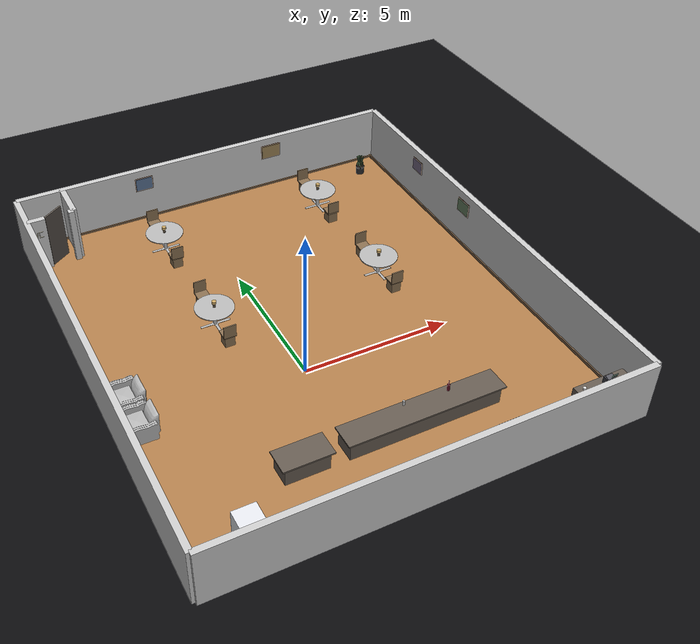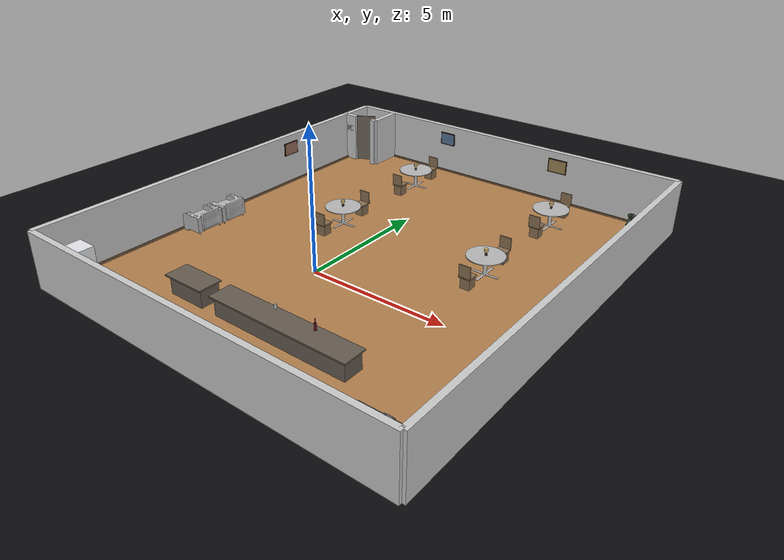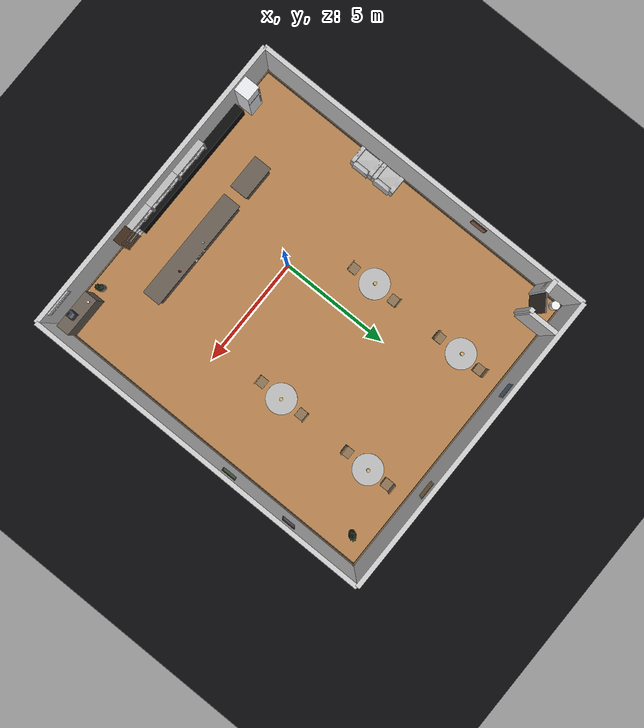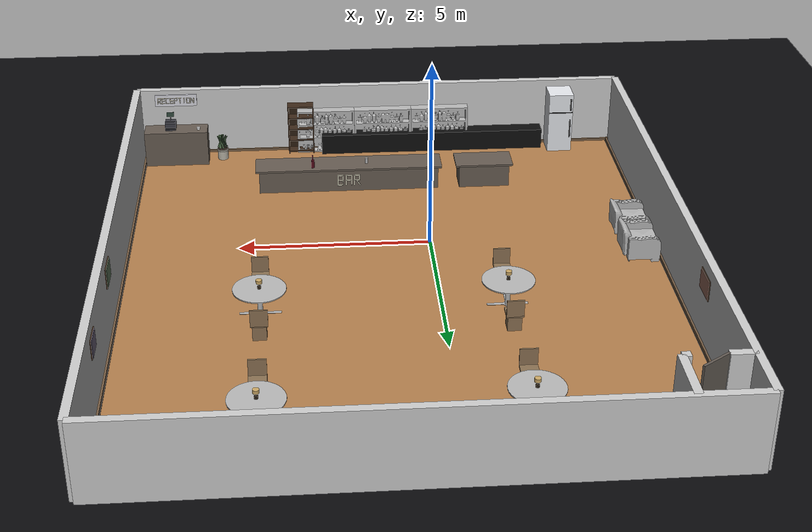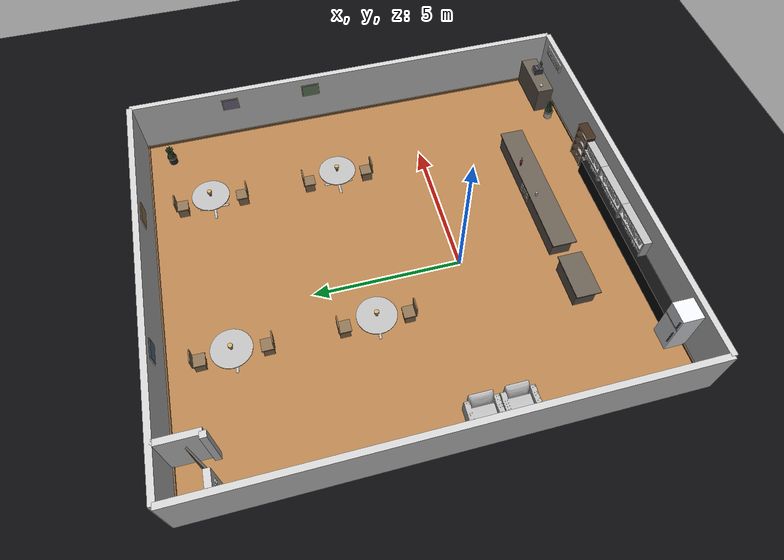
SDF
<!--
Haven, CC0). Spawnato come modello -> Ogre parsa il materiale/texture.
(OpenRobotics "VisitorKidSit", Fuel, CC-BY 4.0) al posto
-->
<sdf version="1.4">
 <world name="default">
  <physics type="ode">
   <gravity>0 0 -9.81</gravity>
   <ode>
    <solver><type>quick</type><iters>20</iters><sor>1.0</sor></solver>
    <constraints>
     <cfm>0.0</cfm>
     <erp>0.2</erp>
     <contact_max_correcting_vel>100.0</contact_max_correcting_vel>
     <contact_surface_layer>0.0</contact_surface_layer>
    </constraints>
   </ode>
   <real_time_update_rate>1000</real_time_update_rate>
   <max_step_size>0.001</max_step_size>
  </physics>
  <scene>
   <ambient>0.55 0.52 0.48 1</ambient>
   <background>0.05 0.05 0.06 1</background>
   <shadows>0</shadows>
   <grid>0</grid>
   <origin_visual>0</origin_visual>
  </scene>
  <include><uri>model://sun</uri></include>
  <model name="ground_plane">
   <static>true</static>
   <pose>1.0 2.0 0 0 0 0</pose>
   <link name="l">
    <collision name="c">
     <pose>0 0 -0.05 0 0 0</pose>
     <geometry><box><size>80 80 0.1</size></box></geometry>
    </collision>
    <visual name="v">
     <pose>0 0 -0.12 0 0 0</pose>
     <geometry><box><size>80 80 0.1</size></box></geometry>
     <material><ambient>0.03 0.03 0.04 1</ambient><diffuse>0.04 0.04 0.05 1</diffuse></material>
    </visual>
   </link>
  </model>
  <include><name>dining_floor</name><uri>model://wood_floor</uri><pose>1.0 2.0 0.02 0 0 0</pose></include>
  <plugin name="gazebo_ros_state" filename="libgazebo_ros_state.so"><update_rate>30.0</update_rate></plugin>
  <model name="wall_south">
   <pose>1 -6 1 0 0 0</pose>
   <static>true</static>
   <link name="link">
    <collision name="col"><geometry><box><size>14 0.2 2</size></box></geometry></collision>
    <visual name="vis">
     <geometry><box><size>14 0.2 2</size></box></geometry>
     <material><ambient>0.8 0.8 0.8 1</ambient></material>
    </visual>
   </link>
  </model>
  <model name="wall_north">
   <pose>1 10 1 0 0 0</pose>
   <static>true</static>
   <link name="link">
    <collision name="col"><geometry><box><size>14 0.2 2</size></box></geometry></collision>
    <visual name="vis">
     <geometry><box><size>14 0.2 2</size></box></geometry>
     <material><ambient>0.8 0.8 0.8 1</ambient></material>
    </visual>
   </link>
  </model>
  <model name="wall_west">
   <pose>-6 2 1 0 0 1.5708</pose>
   <static>true</static>
   <link name="link">
    <collision name="col"><geometry><box><size>16 0.2 2</size></box></geometry></collision>
    <visual name="vis">
     <geometry><box><size>16 0.2 2</size></box></geometry>
     <material><ambient>0.8 0.8 0.8 1</ambient></material>
    </visual>
   </link>
  </model>
  <model name="wall_east">
   <pose>8 2 1 0 0 1.5708</pose>
   <static>true</static>
   <link name="link">
    <collision name="col"><geometry><box><size>16 0.2 2</size></box></geometry></collision>
    <visual name="vis">
     <geometry><box><size>16 0.2 2</size></box></geometry>
     <material><ambient>0.8 0.8 0.8 1</ambient></material>
    </visual>
   </link>
  </model>
  <model name="bathroom_wall_south_w">
   <pose>-5.7 8.6 1 0 0 0</pose>
   <static>true</static>
   <link name="link">
    <collision name="col"><geometry><box><size>0.6 0.2 2</size></box></geometry></collision>
    <visual name="vis">
     <geometry><box><size>0.6 0.2 2</size></box></geometry>
     <material><ambient>0.8 0.8 0.8 1</ambient></material>
    </visual>
   </link>
  </model>
  <model name="bathroom_wall_south_e">
   <pose>-4.5 8.6 1 0 0 0</pose>
   <static>true</static>
   <link name="link">
    <collision name="col"><geometry><box><size>0.2 0.2 2</size></box></geometry></collision>
    <visual name="vis">
     <geometry><box><size>0.2 0.2 2</size></box></geometry>
     <material><ambient>0.8 0.8 0.8 1</ambient></material>
    </visual>
   </link>
  </model>
  <model name="bathroom_wall_east">
   <pose>-4.4 9.3 1 0 0 0</pose>
   <static>true</static>
   <link name="link">
    <collision name="col"><geometry><box><size>0.2 1.4 2</size></box></geometry></collision>
    <visual name="vis">
     <geometry><box><size>0.2 1.4 2</size></box></geometry>
     <material><ambient>0.8 0.8 0.8 1</ambient></material>
    </visual>
   </link>
  </model>
  <model name="bathroom_door">
   <pose>-5.07 8.83 1 0 0 0.6</pose>
   <static>true</static>
   <link name="link">
    <collision name="col"><geometry><box><size>0.8 0.06 2</size></box></geometry></collision>
    <visual name="vis">
     <geometry><box><size>0.8 0.06 2</size></box></geometry>
     <material><ambient>0.30 0.28 0.26 1</ambient><diffuse>0.38 0.35 0.32 1</diffuse></material>
    </visual>
   </link>
  </model>
  <model name="bathroom_toilet">
   <pose>-5.65 9.6 0.2 0 0 0</pose>
   <static>true</static>
   <link name="link">
    <collision name="col">
     <geometry><cylinder><radius>0.18</radius><length>0.4</length></cylinder></geometry>
    </collision>
    <visual name="vis">
     <geometry><cylinder><radius>0.18</radius><length>0.4</length></cylinder></geometry>
     <material><ambient>0.9 0.9 0.9 1</ambient><diffuse>0.95 0.95 0.95 1</diffuse></material>
    </visual>
   </link>
  </model>
  <model name="reception_desk">
   <pose>6.9 -5.3 0.525 0 0 0</pose>
   <static>true</static>
   <link name="link">
    <collision name="col"><geometry><box><size>1.8 0.6 1.05</size></box></geometry></collision>
    <visual name="vis">
     <geometry><box><size>1.8 0.6 1.05</size></box></geometry>
     <material><ambient>0.30 0.28 0.26 1</ambient><diffuse>0.40 0.36 0.32 1</diffuse></material>
    </visual>
   </link>
  </model>
  <model name="reception_bell">
   <pose>6.25 -5.2 1.1 0 0 0</pose>
   <static>true</static>
   <link name="link">
    <visual name="vis">
     <geometry><cylinder><radius>0.05</radius><length>0.06</length></cylinder></geometry>
     <material><ambient>0.85 0.85 0.85 1</ambient><diffuse>0.92 0.92 0.92 1</diffuse></material>
    </visual>
   </link>
  </model>
  <model name="reception_sign">
   <pose>6.9 -5.88 1.7 0 0 0</pose>
   <static>true</static>
   <link name="link">
    <visual name="vis">
     <geometry><box><size>1.2 0.05 0.35</size></box></geometry>
     <material><ambient>0.75 0.75 0.78 1</ambient><diffuse>0.85 0.85 0.88 1</diffuse></material>
    </visual>
   </link>
  </model>
  <model name="kitchen_table">
   <static>true</static>
   <pose>2.0 -3.4 0.33 0 0 0</pose>
   <link name="link">
    <collision name="collision"><geometry><box><size>5.0 0.7 0.66</size></box></geometry></collision>
    <visual name="visual">
     <geometry><box><size>5.0 0.7 0.66</size></box></geometry>
     <material><ambient>0.30 0.28 0.26 1</ambient><diffuse>0.40 0.36 0.32 1</diffuse></material>
    </visual>
   </link>
  </model>
  <model name="bar_counter_top">
   <static>true</static>
   <pose>2.0 -3.43 0.685 0 0 0</pose>
   <link name="link">
    <collision name="c"><geometry><box><size>5.2 0.84 0.05</size></box></geometry></collision>
    <visual name="v">
     <geometry><box><size>5.2 0.84 0.05</size></box></geometry>
     <material><ambient>0.30 0.28 0.26 1</ambient><diffuse>0.40 0.36 0.32 1</diffuse></material>
    </visual>
   </link>
  </model>
  <model name="kitchen_fridge">
   <static>true</static>
   <pose>-4.3 -5.55 0 0 0 0</pose>
   <link name="link">
    <collision name="body">
     <pose>0 0 0.9 0 0 0</pose>
     <geometry><box><size>0.7 0.7 1.8</size></box></geometry>
    </collision>
    <visual name="body">
     <pose>0 0 0.9 0 0 0</pose>
     <geometry><box><size>0.7 0.7 1.8</size></box></geometry>
     <material>
      <ambient>0.82 0.84 0.86 1</ambient>
      <diffuse>0.9 0.91 0.93 1</diffuse>
      <specular>0.5 0.5 0.5 1</specular>
     </material>
    </visual>
    <visual name="split">
     <pose>0 0.351 1.25 0 0 0</pose>
     <geometry><box><size>0.7 0.02 0.025</size></box></geometry>
     <material><ambient>0.15 0.15 0.15 1</ambient></material>
    </visual>
    <visual name="handle_top">
     <pose>-0.28 0.37 1.5 0 0 0</pose>
     <geometry><box><size>0.035 0.05 0.35</size></box></geometry>
     <material><ambient>0.08 0.08 0.08 1</ambient></material>
    </visual>
    <visual name="handle_bottom">
     <pose>-0.28 0.37 0.75 0 0 0</pose>
     <geometry><box><size>0.035 0.05 0.55</size></box></geometry>
     <material><ambient>0.08 0.08 0.08 1</ambient></material>
    </visual>
   </link>
  </model>
  <model name="kitchen_back_counter">
   <static>true</static>
   <pose>-0.55 -5.68 0.305 0 0 0</pose>
   <link name="link">
    <collision name="c"><geometry><box><size>6.5 0.44 0.61</size></box></geometry></collision>
    <visual name="v">
     <geometry><box><size>6.5 0.44 0.61</size></box></geometry>
     <material>
      <ambient>0.02 0.02 0.02 1</ambient>
      <diffuse>0.05 0.05 0.05 1</diffuse>
      <specular>0.12 0.12 0.12 1</specular>
     </material>
    </visual>
   </link>
  </model>
  <model name="kitchen_shelf_cabinet">
   <static>true</static>
   <pose>3.3 -5.72 0 0 0 0</pose>
   <link name="link">
    <visual name="sideL">
     <pose>-0.36 0 0.75 0 0 0</pose>
     <geometry><box><size>0.03 0.34 1.5</size></box></geometry>
     <material><ambient>0.14 0.1 0.06 1</ambient><diffuse>0.24 0.16 0.1 1</diffuse></material>
    </visual>
    <visual name="sideR">
     <pose>0.36 0 0.75 0 0 0</pose>
     <geometry><box><size>0.03 0.34 1.5</size></box></geometry>
     <material><ambient>0.14 0.1 0.06 1</ambient><diffuse>0.24 0.16 0.1 1</diffuse></material>
    </visual>
    <visual name="back">
     <pose>0 -0.16 0.75 0 0 0</pose>
     <geometry><box><size>0.75 0.02 1.5</size></box></geometry>
     <material><ambient>0.1 0.07 0.04 1</ambient><diffuse>0.18 0.12 0.07 1</diffuse></material>
    </visual>
    <visual name="sh1">
     <pose>0 0 0.10 0 0 0</pose>
     <geometry><box><size>0.75 0.34 0.025</size></box></geometry>
     <material><ambient>0.14 0.1 0.06 1</ambient><diffuse>0.24 0.16 0.1 1</diffuse></material>
    </visual>
    <visual name="sh2">
     <pose>0 0 0.45 0 0 0</pose>
     <geometry><box><size>0.75 0.34 0.025</size></box></geometry>
     <material><ambient>0.14 0.1 0.06 1</ambient><diffuse>0.24 0.16 0.1 1</diffuse></material>
    </visual>
    <visual name="sh3">
     <pose>0 0 0.80 0 0 0</pose>
     <geometry><box><size>0.75 0.34 0.025</size></box></geometry>
     <material><ambient>0.14 0.1 0.06 1</ambient><diffuse>0.24 0.16 0.1 1</diffuse></material>
    </visual>
    <visual name="sh4">
     <pose>0 0 1.15 0 0 0</pose>
     <geometry><box><size>0.75 0.34 0.025</size></box></geometry>
     <material><ambient>0.14 0.1 0.06 1</ambient><diffuse>0.24 0.16 0.1 1</diffuse></material>
    </visual>
    <visual name="sh5">
     <pose>0 0 1.50 0 0 0</pose>
     <geometry><box><size>0.75 0.34 0.025</size></box></geometry>
     <material><ambient>0.14 0.1 0.06 1</ambient><diffuse>0.24 0.16 0.1 1</diffuse></material>
    </visual>
    <collision name="c">
     <pose>0 0 0.75 0 0 0</pose>
     <geometry><box><size>0.75 0.34 1.5</size></box></geometry>
    </collision>
   </link>
  </model>
  <include>
   <name>bar_bottles_1</name>
   <uri>model://bar_bottles</uri>
   <pose>-0.77 -5.75 0.67 1.5708 0 1.5708</pose>
  </include>
  <include>
   <name>bar_bottles_2</name>
   <uri>model://bar_bottles</uri>
   <pose>0.90 -5.75 0.67 1.5708 0 1.5708</pose>
  </include>
  <include>
   <name>bar_bottles_3</name>
   <uri>model://bar_bottles</uri>
   <pose>2.57 -5.75 0.67 1.5708 0 1.5708</pose>
  </include>
  <include><name>lodge_sofa</name><uri>model://lodge_sofa</uri><pose>-5.3 0.4 0.02 0 0 1.5708</pose></include>
  <include><name>water_bottle</name><uri>model://water_bottle</uri><pose>1.5 -3.2 0.80 0 0 0</pose></include>
  <model name="wine_bottle">
   <static>true</static>
   <pose>3.0 -3.2 0.71 0 0 0</pose>
   <link name="l">
    <visual name="b">
     <pose>0 0 0.11 0 0 0</pose>
     <geometry><cylinder><radius>0.045</radius><length>0.22</length></cylinder></geometry>
     <material>
      <ambient>0.20 0.02 0.06 1</ambient>
      <diffuse>0.34 0.04 0.10 1</diffuse>
      <specular>0.2 0.05 0.08 1</specular>
     </material>
    </visual>
    <visual name="n">
     <pose>0 0 0.30 0 0 0</pose>
     <geometry><cylinder><radius>0.014</radius><length>0.14</length></cylinder></geometry>
     <material><ambient>0.20 0.02 0.06 1</ambient><diffuse>0.34 0.04 0.10 1</diffuse></material>
    </visual>
   </link>
  </model>
  <model name="side_counter">
   <static>true</static>
   <pose>-1.8 -3.4 0.33 0 0 0</pose>
   <link name="link">
    <collision name="collision"><geometry><box><size>1.4 0.7 0.66</size></box></geometry></collision>
    <visual name="visual">
     <geometry><box><size>1.4 0.7 0.66</size></box></geometry>
     <material><ambient>0.30 0.28 0.26 1</ambient><diffuse>0.40 0.36 0.32 1</diffuse></material>
    </visual>
   </link>
  </model>
  <model name="side_counter_top">
   <static>true</static>
   <pose>-1.8 -3.43 0.685 0 0 0</pose>
   <link name="link">
    <collision name="c"><geometry><box><size>1.6 0.84 0.05</size></box></geometry></collision>
    <visual name="v">
     <geometry><box><size>1.6 0.84 0.05</size></box></geometry>
     <material><ambient>0.30 0.28 0.26 1</ambient><diffuse>0.40 0.36 0.32 1</diffuse></material>
    </visual>
   </link>
  </model>
  <include>
   <name>dining_table_1</name>
   <uri>model://bar_table</uri>
   <pose>4.0 2.5 0 0 0 0</pose>
   <static>true</static>
  </include>
  <include>
   <name>dining_table_2</name>
   <uri>model://bar_table</uri>
   <pose>-2.0 2.5 0 0 0 0</pose>
   <static>true</static>
  </include>
  <include>
   <name>dining_table_3</name>
   <uri>model://bar_table</uri>
   <pose>-2.0 7.0 0 0 0 0</pose>
   <static>true</static>
  </include>
  <include>
   <name>dining_table_4</name>
   <uri>model://bar_table</uri>
   <pose>4.0 7.0 0 0 0 0</pose>
   <static>true</static>
  </include>
  <model name="chair_1a">
   <static>true</static>
   <pose>4.40 2.20 0 0 0 0</pose>
   <link name="l">
    <visual name="s">
     <pose>0 0 0.44 0 0 0</pose>
     <geometry><box><size>0.42 0.42 0.05</size></box></geometry>
     <material><ambient>0.34 0.28 0.20 1</ambient><diffuse>0.54 0.44 0.32 1</diffuse></material>
    </visual>
    <visual name="b">
     <pose>0 -0.19 0.66 0 0 0</pose>
     <geometry><box><size>0.42 0.04 0.44</size></box></geometry>
     <material><ambient>0.34 0.28 0.20 1</ambient><diffuse>0.54 0.44 0.32 1</diffuse></material>
    </visual>
    <visual name="base">
     <pose>0 0 0.21 0 0 0</pose>
     <geometry><box><size>0.34 0.34 0.42</size></box></geometry>
     <material><ambient>0.34 0.28 0.20 1</ambient><diffuse>0.54 0.44 0.32 1</diffuse></material>
    </visual>
   </link>
  </model>
  <model name="chair_1b">
   <static>true</static>
   <pose>4.40 4.30 0 0 0 3.14159</pose>
   <link name="l">
    <visual name="s">
     <pose>0 0 0.44 0 0 0</pose>
     <geometry><box><size>0.42 0.42 0.05</size></box></geometry>
     <material><ambient>0.34 0.28 0.20 1</ambient><diffuse>0.54 0.44 0.32 1</diffuse></material>
    </visual>
    <visual name="b">
     <pose>0 -0.19 0.66 0 0 0</pose>
     <geometry><box><size>0.42 0.04 0.44</size></box></geometry>
     <material><ambient>0.34 0.28 0.20 1</ambient><diffuse>0.54 0.44 0.32 1</diffuse></material>
    </visual>
    <visual name="base">
     <pose>0 0 0.21 0 0 0</pose>
     <geometry><box><size>0.34 0.34 0.42</size></box></geometry>
     <material><ambient>0.34 0.28 0.20 1</ambient><diffuse>0.54 0.44 0.32 1</diffuse></material>
    </visual>
   </link>
  </model>
  <model name="chair_2a">
   <static>true</static>
   <pose>-1.60 2.20 0 0 0 0</pose>
   <link name="l">
    <visual name="s">
     <pose>0 0 0.44 0 0 0</pose>
     <geometry><box><size>0.42 0.42 0.05</size></box></geometry>
     <material><ambient>0.34 0.28 0.20 1</ambient><diffuse>0.54 0.44 0.32 1</diffuse></material>
    </visual>
    <visual name="b">
     <pose>0 -0.19 0.66 0 0 0</pose>
     <geometry><box><size>0.42 0.04 0.44</size></box></geometry>
     <material><ambient>0.34 0.28 0.20 1</ambient><diffuse>0.54 0.44 0.32 1</diffuse></material>
    </visual>
    <visual name="base">
     <pose>0 0 0.21 0 0 0</pose>
     <geometry><box><size>0.34 0.34 0.42</size></box></geometry>
     <material><ambient>0.34 0.28 0.20 1</ambient><diffuse>0.54 0.44 0.32 1</diffuse></material>
    </visual>
   </link>
  </model>
  <model name="chair_2b">
   <static>true</static>
   <pose>-1.60 4.30 0 0 0 3.14159</pose>
   <link name="l">
    <visual name="s">
     <pose>0 0 0.44 0 0 0</pose>
     <geometry><box><size>0.42 0.42 0.05</size></box></geometry>
     <material><ambient>0.34 0.28 0.20 1</ambient><diffuse>0.54 0.44 0.32 1</diffuse></material>
    </visual>
    <visual name="b">
     <pose>0 -0.19 0.66 0 0 0</pose>
     <geometry><box><size>0.42 0.04 0.44</size></box></geometry>
     <material><ambient>0.34 0.28 0.20 1</ambient><diffuse>0.54 0.44 0.32 1</diffuse></material>
    </visual>
    <visual name="base">
     <pose>0 0 0.21 0 0 0</pose>
     <geometry><box><size>0.34 0.34 0.42</size></box></geometry>
     <material><ambient>0.34 0.28 0.20 1</ambient><diffuse>0.54 0.44 0.32 1</diffuse></material>
    </visual>
   </link>
  </model>
  <model name="chair_3a">
   <static>true</static>
   <pose>-1.60 6.70 0 0 0 0</pose>
   <link name="l">
    <visual name="s">
     <pose>0 0 0.44 0 0 0</pose>
     <geometry><box><size>0.42 0.42 0.05</size></box></geometry>
     <material><ambient>0.34 0.28 0.20 1</ambient><diffuse>0.54 0.44 0.32 1</diffuse></material>
    </visual>
    <visual name="b">
     <pose>0 -0.19 0.66 0 0 0</pose>
     <geometry><box><size>0.42 0.04 0.44</size></box></geometry>
     <material><ambient>0.34 0.28 0.20 1</ambient><diffuse>0.54 0.44 0.32 1</diffuse></material>
    </visual>
    <visual name="base">
     <pose>0 0 0.21 0 0 0</pose>
     <geometry><box><size>0.34 0.34 0.42</size></box></geometry>
     <material><ambient>0.34 0.28 0.20 1</ambient><diffuse>0.54 0.44 0.32 1</diffuse></material>
    </visual>
   </link>
  </model>
  <model name="chair_3b">
   <static>true</static>
   <pose>-1.60 8.80 0 0 0 3.14159</pose>
   <link name="l">
    <visual name="s">
     <pose>0 0 0.44 0 0 0</pose>
     <geometry><box><size>0.42 0.42 0.05</size></box></geometry>
     <material><ambient>0.34 0.28 0.20 1</ambient><diffuse>0.54 0.44 0.32 1</diffuse></material>
    </visual>
    <visual name="b">
     <pose>0 -0.19 0.66 0 0 0</pose>
     <geometry><box><size>0.42 0.04 0.44</size></box></geometry>
     <material><ambient>0.34 0.28 0.20 1</ambient><diffuse>0.54 0.44 0.32 1</diffuse></material>
    </visual>
    <visual name="base">
     <pose>0 0 0.21 0 0 0</pose>
     <geometry><box><size>0.34 0.34 0.42</size></box></geometry>
     <material><ambient>0.34 0.28 0.20 1</ambient><diffuse>0.54 0.44 0.32 1</diffuse></material>
    </visual>
   </link>
  </model>
  <model name="chair_4a">
   <static>true</static>
   <pose>4.40 6.70 0 0 0 0</pose>
   <link name="l">
    <visual name="s">
     <pose>0 0 0.44 0 0 0</pose>
     <geometry><box><size>0.42 0.42 0.05</size></box></geometry>
     <material><ambient>0.34 0.28 0.20 1</ambient><diffuse>0.54 0.44 0.32 1</diffuse></material>
    </visual>
    <visual name="b">
     <pose>0 -0.19 0.66 0 0 0</pose>
     <geometry><box><size>0.42 0.04 0.44</size></box></geometry>
     <material><ambient>0.34 0.28 0.20 1</ambient><diffuse>0.54 0.44 0.32 1</diffuse></material>
    </visual>
    <visual name="base">
     <pose>0 0 0.21 0 0 0</pose>
     <geometry><box><size>0.34 0.34 0.42</size></box></geometry>
     <material><ambient>0.34 0.28 0.20 1</ambient><diffuse>0.54 0.44 0.32 1</diffuse></material>
    </visual>
   </link>
  </model>
  <model name="chair_4b">
   <static>true</static>
   <pose>4.40 8.80 0 0 0 3.14159</pose>
   <link name="l">
    <visual name="s">
     <pose>0 0 0.44 0 0 0</pose>
     <geometry><box><size>0.42 0.42 0.05</size></box></geometry>
     <material><ambient>0.34 0.28 0.20 1</ambient><diffuse>0.54 0.44 0.32 1</diffuse></material>
    </visual>
    <visual name="b">
     <pose>0 -0.19 0.66 0 0 0</pose>
     <geometry><box><size>0.42 0.04 0.44</size></box></geometry>
     <material><ambient>0.34 0.28 0.20 1</ambient><diffuse>0.54 0.44 0.32 1</diffuse></material>
    </visual>
    <visual name="base">
     <pose>0 0 0.21 0 0 0</pose>
     <geometry><box><size>0.34 0.34 0.42</size></box></geometry>
     <material><ambient>0.34 0.28 0.20 1</ambient><diffuse>0.54 0.44 0.32 1</diffuse></material>
    </visual>
   </link>
  </model>
  <model name="lamp_t1">
   <static>true</static>
   <pose>4.40 3.25 0.72 0 0 0</pose>
   <link name="l">
    <visual name="base">
     <pose>0 0 0.03 0 0 0</pose>
     <geometry><cylinder><radius>0.045</radius><length>0.06</length></cylinder></geometry>
     <material><ambient>0.10 0.08 0.05 1</ambient><diffuse>0.18 0.14 0.09 1</diffuse></material>
    </visual>
    <visual name="stem">
     <pose>0 0 0.11 0 0 0</pose>
     <geometry><cylinder><radius>0.008</radius><length>0.10</length></cylinder></geometry>
     <material><ambient>0.10 0.08 0.05 1</ambient></material>
    </visual>
    <visual name="shade">
     <pose>0 0 0.19 0 0 0</pose>
     <geometry><cylinder><radius>0.075</radius><length>0.09</length></cylinder></geometry>
     <material>
      <ambient>0.55 0.45 0.28 1</ambient>
      <diffuse>0.80 0.66 0.40 1</diffuse>
      <emissive>0.85 0.70 0.42 1</emissive>
     </material>
    </visual>
   </link>
  </model>
  <model name="lamp_t2">
   <static>true</static>
   <pose>-1.60 3.25 0.72 0 0 0</pose>
   <link name="l">
    <visual name="base">
     <pose>0 0 0.03 0 0 0</pose>
     <geometry><cylinder><radius>0.045</radius><length>0.06</length></cylinder></geometry>
     <material><ambient>0.10 0.08 0.05 1</ambient><diffuse>0.18 0.14 0.09 1</diffuse></material>
    </visual>
    <visual name="stem">
     <pose>0 0 0.11 0 0 0</pose>
     <geometry><cylinder><radius>0.008</radius><length>0.10</length></cylinder></geometry>
     <material><ambient>0.10 0.08 0.05 1</ambient></material>
    </visual>
    <visual name="shade">
     <pose>0 0 0.19 0 0 0</pose>
     <geometry><cylinder><radius>0.075</radius><length>0.09</length></cylinder></geometry>
     <material>
      <ambient>0.55 0.45 0.28 1</ambient>
      <diffuse>0.80 0.66 0.40 1</diffuse>
      <emissive>0.85 0.70 0.42 1</emissive>
     </material>
    </visual>
   </link>
  </model>
  <model name="lamp_t3">
   <static>true</static>
   <pose>-1.60 7.75 0.72 0 0 0</pose>
   <link name="l">
    <visual name="base">
     <pose>0 0 0.03 0 0 0</pose>
     <geometry><cylinder><radius>0.045</radius><length>0.06</length></cylinder></geometry>
     <material><ambient>0.10 0.08 0.05 1</ambient><diffuse>0.18 0.14 0.09 1</diffuse></material>
    </visual>
    <visual name="stem">
     <pose>0 0 0.11 0 0 0</pose>
     <geometry><cylinder><radius>0.008</radius><length>0.10</length></cylinder></geometry>
     <material><ambient>0.10 0.08 0.05 1</ambient></material>
    </visual>
    <visual name="shade">
     <pose>0 0 0.19 0 0 0</pose>
     <geometry><cylinder><radius>0.075</radius><length>0.09</length></cylinder></geometry>
     <material>
      <ambient>0.55 0.45 0.28 1</ambient>
      <diffuse>0.80 0.66 0.40 1</diffuse>
      <emissive>0.85 0.70 0.42 1</emissive>
     </material>
    </visual>
   </link>
  </model>
  <model name="lamp_t4">
   <static>true</static>
   <pose>4.40 7.75 0.72 0 0 0</pose>
   <link name="l">
    <visual name="base">
     <pose>0 0 0.03 0 0 0</pose>
     <geometry><cylinder><radius>0.045</radius><length>0.06</length></cylinder></geometry>
     <material><ambient>0.10 0.08 0.05 1</ambient><diffuse>0.18 0.14 0.09 1</diffuse></material>
    </visual>
    <visual name="stem">
     <pose>0 0 0.11 0 0 0</pose>
     <geometry><cylinder><radius>0.008</radius><length>0.10</length></cylinder></geometry>
     <material><ambient>0.10 0.08 0.05 1</ambient></material>
    </visual>
    <visual name="shade">
     <pose>0 0 0.19 0 0 0</pose>
     <geometry><cylinder><radius>0.075</radius><length>0.09</length></cylinder></geometry>
     <material>
      <ambient>0.55 0.45 0.28 1</ambient>
      <diffuse>0.80 0.66 0.40 1</diffuse>
      <emissive>0.85 0.70 0.42 1</emissive>
     </material>
    </visual>
   </link>
  </model>
  <model name="reception_word">
   <static>true</static>
   <link name="l">
    <visual name="r0_0">
     <pose>7.4170 -5.840 1.7000 0 0.0000 0</pose>
     <geometry><box><size>0.018 0.02 0.170</size></box></geometry>
     <material>
      <ambient>0.60 0.58 0.50 1</ambient>
      <diffuse>0.97 0.95 0.85 1</diffuse>
      <emissive>0.95 0.90 0.70 1</emissive>
     </material>
    </visual>
    <visual name="r0_1">
     <pose>7.3720 -5.840 1.7760 0 0.0000 0</pose>
     <geometry><box><size>0.090 0.02 0.018</size></box></geometry>
     <material>
      <ambient>0.60 0.58 0.50 1</ambient>
      <diffuse>0.97 0.95 0.85 1</diffuse>
      <emissive>0.95 0.90 0.70 1</emissive>
     </material>
    </visual>
    <visual name="r0_2">
     <pose>7.3720 -5.840 1.7000 0 0.0000 0</pose>
     <geometry><box><size>0.090 0.02 0.018</size></box></geometry>
     <material>
      <ambient>0.60 0.58 0.50 1</ambient>
      <diffuse>0.97 0.95 0.85 1</diffuse>
      <emissive>0.95 0.90 0.70 1</emissive>
     </material>
    </visual>
    <visual name="r0_3">
     <pose>7.3360 -5.840 1.7425 0 0.0000 0</pose>
     <geometry><box><size>0.018 0.02 0.085</size></box></geometry>
     <material>
      <ambient>0.60 0.58 0.50 1</ambient>
      <diffuse>0.97 0.95 0.85 1</diffuse>
      <emissive>0.95 0.90 0.70 1</emissive>
     </material>
    </visual>
    <visual name="r0_4">
     <pose>7.3558 -5.840 1.6575 0 0.6028 0</pose>
     <geometry><box><size>0.018 0.02 0.105</size></box></geometry>
     <material>
      <ambient>0.60 0.58 0.50 1</ambient>
      <diffuse>0.97 0.95 0.85 1</diffuse>
      <emissive>0.95 0.90 0.70 1</emissive>
     </material>
    </visual>
    <visual name="r1_0">
     <pose>7.2990 -5.840 1.7000 0 0.0000 0</pose>
     <geometry><box><size>0.018 0.02 0.170</size></box></geometry>
     <material>
      <ambient>0.60 0.58 0.50 1</ambient>
      <diffuse>0.97 0.95 0.85 1</diffuse>
      <emissive>0.95 0.90 0.70 1</emissive>
     </material>
    </visual>
    <visual name="r1_1">
     <pose>7.2540 -5.840 1.7760 0 0.0000 0</pose>
     <geometry><box><size>0.090 0.02 0.018</size></box></geometry>
     <material>
      <ambient>0.60 0.58 0.50 1</ambient>
      <diffuse>0.97 0.95 0.85 1</diffuse>
      <emissive>0.95 0.90 0.70 1</emissive>
     </material>
    </visual>
    <visual name="r1_2">
     <pose>7.2540 -5.840 1.7000 0 0.0000 0</pose>
     <geometry><box><size>0.090 0.02 0.018</size></box></geometry>
     <material>
      <ambient>0.60 0.58 0.50 1</ambient>
      <diffuse>0.97 0.95 0.85 1</diffuse>
      <emissive>0.95 0.90 0.70 1</emissive>
     </material>
    </visual>
    <visual name="r1_3">
     <pose>7.2540 -5.840 1.6240 0 0.0000 0</pose>
     <geometry><box><size>0.090 0.02 0.018</size></box></geometry>
     <material>
      <ambient>0.60 0.58 0.50 1</ambient>
      <diffuse>0.97 0.95 0.85 1</diffuse>
      <emissive>0.95 0.90 0.70 1</emissive>
     </material>
    </visual>
    <visual name="r2_0">
     <pose>7.1810 -5.840 1.7000 0 0.0000 0</pose>
     <geometry><box><size>0.018 0.02 0.170</size></box></geometry>
     <material>
      <ambient>0.60 0.58 0.50 1</ambient>
      <diffuse>0.97 0.95 0.85 1</diffuse>
      <emissive>0.95 0.90 0.70 1</emissive>
     </material>
    </visual>
    <visual name="r2_1">
     <pose>7.1360 -5.840 1.7760 0 0.0000 0</pose>
     <geometry><box><size>0.090 0.02 0.018</size></box></geometry>
     <material>
      <ambient>0.60 0.58 0.50 1</ambient>
      <diffuse>0.97 0.95 0.85 1</diffuse>
      <emissive>0.95 0.90 0.70 1</emissive>
     </material>
    </visual>
    <visual name="r2_2">
     <pose>7.1360 -5.840 1.6240 0 0.0000 0</pose>
     <geometry><box><size>0.090 0.02 0.018</size></box></geometry>
     <material>
      <ambient>0.60 0.58 0.50 1</ambient>
      <diffuse>0.97 0.95 0.85 1</diffuse>
      <emissive>0.95 0.90 0.70 1</emissive>
     </material>
    </visual>
    <visual name="r3_0">
     <pose>7.0630 -5.840 1.7000 0 0.0000 0</pose>
     <geometry><box><size>0.018 0.02 0.170</size></box></geometry>
     <material>
      <ambient>0.60 0.58 0.50 1</ambient>
      <diffuse>0.97 0.95 0.85 1</diffuse>
      <emissive>0.95 0.90 0.70 1</emissive>
     </material>
    </visual>
    <visual name="r3_1">
     <pose>7.0180 -5.840 1.7760 0 0.0000 0</pose>
     <geometry><box><size>0.090 0.02 0.018</size></box></geometry>
     <material>
      <ambient>0.60 0.58 0.50 1</ambient>
      <diffuse>0.97 0.95 0.85 1</diffuse>
      <emissive>0.95 0.90 0.70 1</emissive>
     </material>
    </visual>
    <visual name="r3_2">
     <pose>7.0180 -5.840 1.7000 0 0.0000 0</pose>
     <geometry><box><size>0.090 0.02 0.018</size></box></geometry>
     <material>
      <ambient>0.60 0.58 0.50 1</ambient>
      <diffuse>0.97 0.95 0.85 1</diffuse>
      <emissive>0.95 0.90 0.70 1</emissive>
     </material>
    </visual>
    <visual name="r3_3">
     <pose>7.0180 -5.840 1.6240 0 0.0000 0</pose>
     <geometry><box><size>0.090 0.02 0.018</size></box></geometry>
     <material>
      <ambient>0.60 0.58 0.50 1</ambient>
      <diffuse>0.97 0.95 0.85 1</diffuse>
      <emissive>0.95 0.90 0.70 1</emissive>
     </material>
    </visual>
    <visual name="r4_0">
     <pose>6.9450 -5.840 1.7000 0 0.0000 0</pose>
     <geometry><box><size>0.018 0.02 0.170</size></box></geometry>
     <material>
      <ambient>0.60 0.58 0.50 1</ambient>
      <diffuse>0.97 0.95 0.85 1</diffuse>
      <emissive>0.95 0.90 0.70 1</emissive>
     </material>
    </visual>
    <visual name="r4_1">
     <pose>6.9000 -5.840 1.7760 0 0.0000 0</pose>
     <geometry><box><size>0.090 0.02 0.018</size></box></geometry>
     <material>
      <ambient>0.60 0.58 0.50 1</ambient>
      <diffuse>0.97 0.95 0.85 1</diffuse>
      <emissive>0.95 0.90 0.70 1</emissive>
     </material>
    </visual>
    <visual name="r4_2">
     <pose>6.9000 -5.840 1.7000 0 0.0000 0</pose>
     <geometry><box><size>0.090 0.02 0.018</size></box></geometry>
     <material>
      <ambient>0.60 0.58 0.50 1</ambient>
      <diffuse>0.97 0.95 0.85 1</diffuse>
      <emissive>0.95 0.90 0.70 1</emissive>
     </material>
    </visual>
    <visual name="r4_3">
     <pose>6.8640 -5.840 1.7425 0 0.0000 0</pose>
     <geometry><box><size>0.018 0.02 0.085</size></box></geometry>
     <material>
      <ambient>0.60 0.58 0.50 1</ambient>
      <diffuse>0.97 0.95 0.85 1</diffuse>
      <emissive>0.95 0.90 0.70 1</emissive>
     </material>
    </visual>
    <visual name="r5_0">
     <pose>6.7820 -5.840 1.7760 0 0.0000 0</pose>
     <geometry><box><size>0.090 0.02 0.018</size></box></geometry>
     <material>
      <ambient>0.60 0.58 0.50 1</ambient>
      <diffuse>0.97 0.95 0.85 1</diffuse>
      <emissive>0.95 0.90 0.70 1</emissive>
     </material>
    </visual>
    <visual name="r5_1">
     <pose>6.7820 -5.840 1.7000 0 0.0000 0</pose>
     <geometry><box><size>0.018 0.02 0.170</size></box></geometry>
     <material>
      <ambient>0.60 0.58 0.50 1</ambient>
      <diffuse>0.97 0.95 0.85 1</diffuse>
      <emissive>0.95 0.90 0.70 1</emissive>
     </material>
    </visual>
    <visual name="r6_0">
     <pose>6.6640 -5.840 1.7000 0 0.0000 0</pose>
     <geometry><box><size>0.018 0.02 0.170</size></box></geometry>
     <material>
      <ambient>0.60 0.58 0.50 1</ambient>
      <diffuse>0.97 0.95 0.85 1</diffuse>
      <emissive>0.95 0.90 0.70 1</emissive>
     </material>
    </visual>
    <visual name="r7_0">
     <pose>6.5910 -5.840 1.7000 0 0.0000 0</pose>
     <geometry><box><size>0.018 0.02 0.170</size></box></geometry>
     <material>
      <ambient>0.60 0.58 0.50 1</ambient>
      <diffuse>0.97 0.95 0.85 1</diffuse>
      <emissive>0.95 0.90 0.70 1</emissive>
     </material>
    </visual>
    <visual name="r7_1">
     <pose>6.5010 -5.840 1.7000 0 0.0000 0</pose>
     <geometry><box><size>0.018 0.02 0.170</size></box></geometry>
     <material>
      <ambient>0.60 0.58 0.50 1</ambient>
      <diffuse>0.97 0.95 0.85 1</diffuse>
      <emissive>0.95 0.90 0.70 1</emissive>
     </material>
    </visual>
    <visual name="r7_2">
     <pose>6.5460 -5.840 1.7760 0 0.0000 0</pose>
     <geometry><box><size>0.090 0.02 0.018</size></box></geometry>
     <material>
      <ambient>0.60 0.58 0.50 1</ambient>
      <diffuse>0.97 0.95 0.85 1</diffuse>
      <emissive>0.95 0.90 0.70 1</emissive>
     </material>
    </visual>
    <visual name="r7_3">
     <pose>6.5460 -5.840 1.6240 0 0.0000 0</pose>
     <geometry><box><size>0.090 0.02 0.018</size></box></geometry>
     <material>
      <ambient>0.60 0.58 0.50 1</ambient>
      <diffuse>0.97 0.95 0.85 1</diffuse>
      <emissive>0.95 0.90 0.70 1</emissive>
     </material>
    </visual>
    <visual name="r8_0">
     <pose>6.4730 -5.840 1.7000 0 0.0000 0</pose>
     <geometry><box><size>0.018 0.02 0.170</size></box></geometry>
     <material>
      <ambient>0.60 0.58 0.50 1</ambient>
      <diffuse>0.97 0.95 0.85 1</diffuse>
      <emissive>0.95 0.90 0.70 1</emissive>
     </material>
    </visual>
    <visual name="r8_1">
     <pose>6.3830 -5.840 1.7000 0 0.0000 0</pose>
     <geometry><box><size>0.018 0.02 0.170</size></box></geometry>
     <material>
      <ambient>0.60 0.58 0.50 1</ambient>
      <diffuse>0.97 0.95 0.85 1</diffuse>
      <emissive>0.95 0.90 0.70 1</emissive>
     </material>
    </visual>
    <visual name="r8_2">
     <pose>6.4280 -5.840 1.7000 0 0.4869 0</pose>
     <geometry><box><size>0.018 0.02 0.189</size></box></geometry>
     <material>
      <ambient>0.60 0.58 0.50 1</ambient>
      <diffuse>0.97 0.95 0.85 1</diffuse>
      <emissive>0.95 0.90 0.70 1</emissive>
     </material>
    </visual>
   </link>
  </model>
  <model name="bar_sign">
   <static>true</static>
   <link name="l">
    <visual name="b0_0">
     <pose>2.3100 -3.040 0.3600 0 0.0000 0</pose>
     <geometry><box><size>0.028 0.02 0.320</size></box></geometry>
     <material>
      <ambient>0.60 0.58 0.50 1</ambient>
      <diffuse>0.97 0.95 0.85 1</diffuse>
      <emissive>0.95 0.90 0.70 1</emissive>
     </material>
    </visual>
    <visual name="b0_1">
     <pose>2.2300 -3.040 0.5060 0 0.0000 0</pose>
     <geometry><box><size>0.160 0.02 0.028</size></box></geometry>
     <material>
      <ambient>0.60 0.58 0.50 1</ambient>
      <diffuse>0.97 0.95 0.85 1</diffuse>
      <emissive>0.95 0.90 0.70 1</emissive>
     </material>
    </visual>
    <visual name="b0_2">
     <pose>2.2300 -3.040 0.3600 0 0.0000 0</pose>
     <geometry><box><size>0.160 0.02 0.028</size></box></geometry>
     <material>
      <ambient>0.60 0.58 0.50 1</ambient>
      <diffuse>0.97 0.95 0.85 1</diffuse>
      <emissive>0.95 0.90 0.70 1</emissive>
     </material>
    </visual>
    <visual name="b0_3">
     <pose>2.2300 -3.040 0.2140 0 0.0000 0</pose>
     <geometry><box><size>0.160 0.02 0.028</size></box></geometry>
     <material>
      <ambient>0.60 0.58 0.50 1</ambient>
      <diffuse>0.97 0.95 0.85 1</diffuse>
      <emissive>0.95 0.90 0.70 1</emissive>
     </material>
    </visual>
    <visual name="b0_4">
     <pose>2.1640 -3.040 0.4400 0 0.0000 0</pose>
     <geometry><box><size>0.028 0.02 0.160</size></box></geometry>
     <material>
      <ambient>0.60 0.58 0.50 1</ambient>
      <diffuse>0.97 0.95 0.85 1</diffuse>
      <emissive>0.95 0.90 0.70 1</emissive>
     </material>
    </visual>
    <visual name="b0_5">
     <pose>2.1640 -3.040 0.2800 0 0.0000 0</pose>
     <geometry><box><size>0.028 0.02 0.160</size></box></geometry>
     <material>
      <ambient>0.60 0.58 0.50 1</ambient>
      <diffuse>0.97 0.95 0.85 1</diffuse>
      <emissive>0.95 0.90 0.70 1</emissive>
     </material>
    </visual>
    <visual name="b1_0">
     <pose>2.0800 -3.040 0.3600 0 0.0000 0</pose>
     <geometry><box><size>0.028 0.02 0.320</size></box></geometry>
     <material>
      <ambient>0.60 0.58 0.50 1</ambient>
      <diffuse>0.97 0.95 0.85 1</diffuse>
      <emissive>0.95 0.90 0.70 1</emissive>
     </material>
    </visual>
    <visual name="b1_1">
     <pose>1.9200 -3.040 0.3600 0 0.0000 0</pose>
     <geometry><box><size>0.028 0.02 0.320</size></box></geometry>
     <material>
      <ambient>0.60 0.58 0.50 1</ambient>
      <diffuse>0.97 0.95 0.85 1</diffuse>
      <emissive>0.95 0.90 0.70 1</emissive>
     </material>
    </visual>
    <visual name="b1_2">
     <pose>2.0000 -3.040 0.5060 0 0.0000 0</pose>
     <geometry><box><size>0.160 0.02 0.028</size></box></geometry>
     <material>
      <ambient>0.60 0.58 0.50 1</ambient>
      <diffuse>0.97 0.95 0.85 1</diffuse>
      <emissive>0.95 0.90 0.70 1</emissive>
     </material>
    </visual>
    <visual name="b1_3">
     <pose>2.0000 -3.040 0.3600 0 0.0000 0</pose>
     <geometry><box><size>0.160 0.02 0.028</size></box></geometry>
     <material>
      <ambient>0.60 0.58 0.50 1</ambient>
      <diffuse>0.97 0.95 0.85 1</diffuse>
      <emissive>0.95 0.90 0.70 1</emissive>
     </material>
    </visual>
    <visual name="b2_0">
     <pose>1.8500 -3.040 0.3600 0 0.0000 0</pose>
     <geometry><box><size>0.028 0.02 0.320</size></box></geometry>
     <material>
      <ambient>0.60 0.58 0.50 1</ambient>
      <diffuse>0.97 0.95 0.85 1</diffuse>
      <emissive>0.95 0.90 0.70 1</emissive>
     </material>
    </visual>
    <visual name="b2_1">
     <pose>1.7700 -3.040 0.5060 0 0.0000 0</pose>
     <geometry><box><size>0.160 0.02 0.028</size></box></geometry>
     <material>
      <ambient>0.60 0.58 0.50 1</ambient>
      <diffuse>0.97 0.95 0.85 1</diffuse>
      <emissive>0.95 0.90 0.70 1</emissive>
     </material>
    </visual>
    <visual name="b2_2">
     <pose>1.7700 -3.040 0.3600 0 0.0000 0</pose>
     <geometry><box><size>0.160 0.02 0.028</size></box></geometry>
     <material>
      <ambient>0.60 0.58 0.50 1</ambient>
      <diffuse>0.97 0.95 0.85 1</diffuse>
      <emissive>0.95 0.90 0.70 1</emissive>
     </material>
    </visual>
    <visual name="b2_3">
     <pose>1.7040 -3.040 0.4400 0 0.0000 0</pose>
     <geometry><box><size>0.028 0.02 0.160</size></box></geometry>
     <material>
      <ambient>0.60 0.58 0.50 1</ambient>
      <diffuse>0.97 0.95 0.85 1</diffuse>
      <emissive>0.95 0.90 0.70 1</emissive>
     </material>
    </visual>
    <visual name="b2_4">
     <pose>1.7412 -3.040 0.2800 0 0.5764 0</pose>
     <geometry><box><size>0.028 0.02 0.195</size></box></geometry>
     <material>
      <ambient>0.60 0.58 0.50 1</ambient>
      <diffuse>0.97 0.95 0.85 1</diffuse>
      <emissive>0.95 0.90 0.70 1</emissive>
     </material>
    </visual>
   </link>
  </model>
  <model name="toilet_sign">
   <static>true</static>
   <link name="l">
    <visual name="w0_0">
     <pose>-5.8335 8.490 1.4500 0 2.9917 0</pose>
     <geometry><box><size>0.020 0.02 0.220</size></box></geometry>
     <material>
      <ambient>0.60 0.58 0.50 1</ambient>
      <diffuse>0.97 0.95 0.85 1</diffuse>
      <emissive>0.95 0.90 0.70 1</emissive>
     </material>
    </visual>
    <visual name="w0_1">
     <pose>-5.8043 8.490 1.4115 0 0.2321 0</pose>
     <geometry><box><size>0.020 0.02 0.144</size></box></geometry>
     <material>
      <ambient>0.60 0.58 0.50 1</ambient>
      <diffuse>0.97 0.95 0.85 1</diffuse>
      <emissive>0.95 0.90 0.70 1</emissive>
     </material>
    </visual>
    <visual name="w0_2">
     <pose>-5.7757 8.490 1.4115 0 2.9095 0</pose>
     <geometry><box><size>0.020 0.02 0.144</size></box></geometry>
     <material>
      <ambient>0.60 0.58 0.50 1</ambient>
      <diffuse>0.97 0.95 0.85 1</diffuse>
      <emissive>0.95 0.90 0.70 1</emissive>
     </material>
    </visual>
    <visual name="w0_3">
     <pose>-5.7465 8.490 1.4500 0 0.1499 0</pose>
     <geometry><box><size>0.020 0.02 0.220</size></box></geometry>
     <material>
      <ambient>0.60 0.58 0.50 1</ambient>
      <diffuse>0.97 0.95 0.85 1</diffuse>
      <emissive>0.95 0.90 0.70 1</emissive>
     </material>
    </visual>
    <visual name="w1_0">
     <pose>-5.6750 8.490 1.4500 0 0.0000 0</pose>
     <geometry><box><size>0.020 0.02 0.220</size></box></geometry>
     <material>
      <ambient>0.60 0.58 0.50 1</ambient>
      <diffuse>0.97 0.95 0.85 1</diffuse>
      <emissive>0.95 0.90 0.70 1</emissive>
     </material>
    </visual>
    <visual name="w1_1">
     <pose>-5.6100 8.490 1.5500 0 0.0000 0</pose>
     <geometry><box><size>0.130 0.02 0.020</size></box></geometry>
     <material>
      <ambient>0.60 0.58 0.50 1</ambient>
      <diffuse>0.97 0.95 0.85 1</diffuse>
      <emissive>0.95 0.90 0.70 1</emissive>
     </material>
    </visual>
    <visual name="w1_2">
     <pose>-5.6100 8.490 1.3500 0 0.0000 0</pose>
     <geometry><box><size>0.130 0.02 0.020</size></box></geometry>
     <material>
      <ambient>0.60 0.58 0.50 1</ambient>
      <diffuse>0.97 0.95 0.85 1</diffuse>
      <emissive>0.95 0.90 0.70 1</emissive>
     </material>
    </visual>
   </link>
  </model>
  <model name="cash_register">
   <static>true</static>
   <pose>7.05 -5.35 1.05 0 0 0</pose>
   <link name="l">
    <visual name="body">
     <pose>0 0 0.11 0 0 0</pose>
     <geometry><box><size>0.30 0.34 0.22</size></box></geometry>
     <material>
      <ambient>0.14 0.14 0.16 1</ambient>
      <diffuse>0.24 0.24 0.27 1</diffuse>
      <specular>0.2 0.2 0.2 1</specular>
     </material>
    </visual>
    <visual name="drawer">
     <pose>0 0.171 0.07 0 0 0</pose>
     <geometry><box><size>0.30 0.01 0.06</size></box></geometry>
     <material><ambient>0.05 0.05 0.06 1</ambient><diffuse>0.09 0.09 0.10 1</diffuse></material>
    </visual>
    <visual name="keypad">
     <pose>0 0.06 0.235 0.35 0 0</pose>
     <geometry><box><size>0.24 0.16 0.02</size></box></geometry>
     <material><ambient>0.22 0.22 0.24 1</ambient><diffuse>0.34 0.34 0.37 1</diffuse></material>
    </visual>
    <visual name="post">
     <pose>0 -0.10 0.30 0 0 0</pose>
     <geometry><box><size>0.03 0.03 0.16</size></box></geometry>
     <material><ambient>0.05 0.05 0.06 1</ambient><diffuse>0.09 0.09 0.10 1</diffuse></material>
    </visual>
    <visual name="screen">
     <pose>0 -0.085 0.40 0.25 0 0</pose>
     <geometry><box><size>0.20 0.02 0.13</size></box></geometry>
     <material>
      <ambient>0.10 0.14 0.12 1</ambient>
      <diffuse>0.16 0.24 0.20 1</diffuse>
      <emissive>0.10 0.20 0.14 1</emissive>
     </material>
    </visual>
   </link>
  </model>
  <model name="plant_reception">
   <static>true</static>
   <pose>5.6 -5.4 0 0 0 0</pose>
   <link name="l">
    <visual name="pot">
     <pose>0 0 0.16 0 0 0</pose>
     <geometry><cylinder><radius>0.15</radius><length>0.32</length></cylinder></geometry>
     <material>
      <ambient>0.50 0.48 0.44 1</ambient>
      <diffuse>0.74 0.72 0.67 1</diffuse>
      <specular>0.2 0.2 0.2 1</specular>
     </material>
    </visual>
    <visual name="rim">
     <pose>0 0 0.32 0 0 0</pose>
     <geometry><cylinder><radius>0.165</radius><length>0.04</length></cylinder></geometry>
     <material>
      <ambient>0.50 0.48 0.44 1</ambient>
      <diffuse>0.74 0.72 0.67 1</diffuse>
      <specular>0.2 0.2 0.2 1</specular>
     </material>
    </visual>
    <visual name="soil">
     <pose>0 0 0.335 0 0 0</pose>
     <geometry><cylinder><radius>0.145</radius><length>0.02</length></cylinder></geometry>
     <material><ambient>0.10 0.08 0.06 1</ambient><diffuse>0.16 0.12 0.09 1</diffuse></material>
    </visual>
    <visual name="leaf0">
     <pose>0.070 0.000 0.56 0.550 0 0.000</pose>
     <geometry><box><size>0.06 0.015 0.40</size></box></geometry>
     <material><ambient>0.14 0.22 0.12 1</ambient><diffuse>0.24 0.34 0.22 1</diffuse></material>
    </visual>
    <visual name="leaf1">
     <pose>0.049 0.049 0.56 0.550 0 0.785</pose>
     <geometry><box><size>0.06 0.015 0.40</size></box></geometry>
     <material><ambient>0.14 0.22 0.12 1</ambient><diffuse>0.24 0.34 0.22 1</diffuse></material>
    </visual>
    <visual name="leaf2">
     <pose>0.000 0.070 0.56 0.550 0 1.571</pose>
     <geometry><box><size>0.06 0.015 0.40</size></box></geometry>
     <material><ambient>0.14 0.22 0.12 1</ambient><diffuse>0.24 0.34 0.22 1</diffuse></material>
    </visual>
    <visual name="leaf3">
     <pose>-0.049 0.049 0.56 0.550 0 2.356</pose>
     <geometry><box><size>0.06 0.015 0.40</size></box></geometry>
     <material><ambient>0.14 0.22 0.12 1</ambient><diffuse>0.24 0.34 0.22 1</diffuse></material>
    </visual>
    <visual name="leaf4">
     <pose>-0.070 0.000 0.56 0.550 0 3.142</pose>
     <geometry><box><size>0.06 0.015 0.40</size></box></geometry>
     <material><ambient>0.14 0.22 0.12 1</ambient><diffuse>0.24 0.34 0.22 1</diffuse></material>
    </visual>
    <visual name="leaf5">
     <pose>-0.049 -0.049 0.56 0.550 0 3.927</pose>
     <geometry><box><size>0.06 0.015 0.40</size></box></geometry>
     <material><ambient>0.14 0.22 0.12 1</ambient><diffuse>0.24 0.34 0.22 1</diffuse></material>
    </visual>
    <visual name="leaf6">
     <pose>-0.000 -0.070 0.56 0.550 0 4.712</pose>
     <geometry><box><size>0.06 0.015 0.40</size></box></geometry>
     <material><ambient>0.14 0.22 0.12 1</ambient><diffuse>0.24 0.34 0.22 1</diffuse></material>
    </visual>
    <visual name="leaf7">
     <pose>0.049 -0.049 0.56 0.550 0 5.498</pose>
     <geometry><box><size>0.06 0.015 0.40</size></box></geometry>
     <material><ambient>0.14 0.22 0.12 1</ambient><diffuse>0.24 0.34 0.22 1</diffuse></material>
    </visual>
    <visual name="lin0">
     <pose>0 0 0.60 0.2 0 0.400</pose>
     <geometry><box><size>0.05 0.015 0.34</size></box></geometry>
     <material><ambient>0.14 0.22 0.12 1</ambient><diffuse>0.24 0.34 0.22 1</diffuse></material>
    </visual>
    <visual name="lin1">
     <pose>0 0 0.60 0.2 0 1.971</pose>
     <geometry><box><size>0.05 0.015 0.34</size></box></geometry>
     <material><ambient>0.14 0.22 0.12 1</ambient><diffuse>0.24 0.34 0.22 1</diffuse></material>
    </visual>
    <visual name="lin2">
     <pose>0 0 0.60 0.2 0 3.542</pose>
     <geometry><box><size>0.05 0.015 0.34</size></box></geometry>
     <material><ambient>0.14 0.22 0.12 1</ambient><diffuse>0.24 0.34 0.22 1</diffuse></material>
    </visual>
    <visual name="lin3">
     <pose>0 0 0.60 0.2 0 5.112</pose>
     <geometry><box><size>0.05 0.015 0.34</size></box></geometry>
     <material><ambient>0.14 0.22 0.12 1</ambient><diffuse>0.24 0.34 0.22 1</diffuse></material>
    </visual>
    <collision name="c">
     <pose>0 0 0.4 0 0 0</pose>
     <geometry><cylinder><radius>0.18</radius><length>0.8</length></cylinder></geometry>
    </collision>
   </link>
  </model>
  <model name="pic_n1">
   <static>true</static>
   <link name="l">
    <visual name="fr">
     <pose>-1.5 9.89 1.45 0 0 0</pose>
     <geometry><box><size>0.66 0.03 0.51</size></box></geometry>
     <material><ambient>0.14 0.10 0.06 1</ambient><diffuse>0.24 0.16 0.10 1</diffuse></material>
    </visual>
    <visual name="cv">
     <pose>-1.5 9.87 1.45 0 0 0</pose>
     <geometry><box><size>0.60 0.02 0.45</size></box></geometry>
     <material><ambient>0.21 0.27 0.35 1</ambient><diffuse>0.35 0.45 0.58 1</diffuse></material>
    </visual>
   </link>
  </model>
  <model name="pic_n2">
   <static>true</static>
   <link name="l">
    <visual name="fr">
     <pose>3.5 9.89 1.45 0 0 0</pose>
     <geometry><box><size>0.76 0.03 0.54</size></box></geometry>
     <material><ambient>0.14 0.10 0.06 1</ambient><diffuse>0.24 0.16 0.10 1</diffuse></material>
    </visual>
    <visual name="cv">
     <pose>3.5 9.87 1.45 0 0 0</pose>
     <geometry><box><size>0.70 0.02 0.48</size></box></geometry>
     <material><ambient>0.37 0.31 0.20 1</ambient><diffuse>0.62 0.52 0.34 1</diffuse></material>
    </visual>
   </link>
  </model>
  <model name="pic_e1">
   <static>true</static>
   <link name="l">
    <visual name="fr">
     <pose>7.89 3.5 1.45 0 0 0</pose>
     <geometry><box><size>0.03 0.66 0.51</size></box></geometry>
     <material><ambient>0.14 0.10 0.06 1</ambient><diffuse>0.24 0.16 0.10 1</diffuse></material>
    </visual>
    <visual name="cv">
     <pose>7.87 3.5 1.45 0 0 0</pose>
     <geometry><box><size>0.02 0.60 0.45</size></box></geometry>
     <material><ambient>0.24 0.30 0.23 1</ambient><diffuse>0.4 0.5 0.38 1</diffuse></material>
    </visual>
   </link>
  </model>
  <model name="pic_e2">
   <static>true</static>
   <link name="l">
    <visual name="fr">
     <pose>7.89 6.5 1.45 0 0 0</pose>
     <geometry><box><size>0.03 0.61 0.48</size></box></geometry>
     <material><ambient>0.14 0.10 0.06 1</ambient><diffuse>0.24 0.16 0.10 1</diffuse></material>
    </visual>
    <visual name="cv">
     <pose>7.87 6.5 1.45 0 0 0</pose>
     <geometry><box><size>0.02 0.55 0.42</size></box></geometry>
     <material><ambient>0.28 0.25 0.31 1</ambient><diffuse>0.46 0.42 0.52 1</diffuse></material>
    </visual>
   </link>
  </model>
  <model name="pic_w1">
   <static>true</static>
   <link name="l">
    <visual name="fr">
     <pose>-5.89 5.0 1.45 0 0 0</pose>
     <geometry><box><size>0.03 0.72 0.52</size></box></geometry>
     <material><ambient>0.14 0.10 0.06 1</ambient><diffuse>0.24 0.16 0.10 1</diffuse></material>
    </visual>
    <visual name="cv">
     <pose>-5.87 5.0 1.45 0 0 0</pose>
     <geometry><box><size>0.02 0.66 0.46</size></box></geometry>
     <material><ambient>0.36 0.25 0.22 1</ambient><diffuse>0.6 0.42 0.36 1</diffuse></material>
    </visual>
   </link>
  </model>
  <model name="skirting">
   <static>true</static>
   <link name="l">
    <visual name="s">
     <pose>1.0 -5.85 0.05 0 0 0</pose>
     <geometry><box><size>13.8 0.05 0.10</size></box></geometry>
     <material><ambient>0.28 0.22 0.16 1</ambient><diffuse>0.46 0.36 0.26 1</diffuse></material>
    </visual>
    <visual name="n">
     <pose>1.0 9.85 0.05 0 0 0</pose>
     <geometry><box><size>13.8 0.05 0.10</size></box></geometry>
     <material><ambient>0.28 0.22 0.16 1</ambient><diffuse>0.46 0.36 0.26 1</diffuse></material>
    </visual>
    <visual name="w">
     <pose>-5.85 2.0 0.05 0 0 0</pose>
     <geometry><box><size>0.05 15.8 0.10</size></box></geometry>
     <material><ambient>0.28 0.22 0.16 1</ambient><diffuse>0.46 0.36 0.26 1</diffuse></material>
    </visual>
    <visual name="e">
     <pose>7.85 2.0 0.05 0 0 0</pose>
     <geometry><box><size>0.05 15.8 0.10</size></box></geometry>
     <material><ambient>0.28 0.22 0.16 1</ambient><diffuse>0.46 0.36 0.26 1</diffuse></material>
    </visual>
   </link>
  </model>
  <model name="plant_corner_ne">
   <static>true</static>
   <pose>6.9 9.0 0 0 0 0</pose>
   <link name="l">
    <visual name="pot">
     <pose>0 0 0.16 0 0 0</pose>
     <geometry><cylinder><radius>0.15</radius><length>0.32</length></cylinder></geometry>
     <material>
      <ambient>0.10 0.10 0.11 1</ambient>
      <diffuse>0.16 0.16 0.17 1</diffuse>
      <specular>0.2 0.2 0.2 1</specular>
     </material>
    </visual>
    <visual name="rim">
     <pose>0 0 0.32 0 0 0</pose>
     <geometry><cylinder><radius>0.165</radius><length>0.04</length></cylinder></geometry>
     <material>
      <ambient>0.10 0.10 0.11 1</ambient>
      <diffuse>0.16 0.16 0.17 1</diffuse>
      <specular>0.2 0.2 0.2 1</specular>
     </material>
    </visual>
    <visual name="soil">
     <pose>0 0 0.335 0 0 0</pose>
     <geometry><cylinder><radius>0.145</radius><length>0.02</length></cylinder></geometry>
     <material><ambient>0.10 0.08 0.06 1</ambient><diffuse>0.16 0.12 0.09 1</diffuse></material>
    </visual>
    <visual name="leaf0">
     <pose>0.070 0.000 0.56 0.55 0 0.000</pose>
     <geometry><box><size>0.06 0.015 0.40</size></box></geometry>
     <material><ambient>0.14 0.22 0.12 1</ambient><diffuse>0.24 0.34 0.22 1</diffuse></material>
    </visual>
    <visual name="leaf1">
     <pose>0.049 0.049 0.56 0.55 0 0.785</pose>
     <geometry><box><size>0.06 0.015 0.40</size></box></geometry>
     <material><ambient>0.14 0.22 0.12 1</ambient><diffuse>0.24 0.34 0.22 1</diffuse></material>
    </visual>
    <visual name="leaf2">
     <pose>0.000 0.070 0.56 0.55 0 1.571</pose>
     <geometry><box><size>0.06 0.015 0.40</size></box></geometry>
     <material><ambient>0.14 0.22 0.12 1</ambient><diffuse>0.24 0.34 0.22 1</diffuse></material>
    </visual>
    <visual name="leaf3">
     <pose>-0.049 0.049 0.56 0.55 0 2.356</pose>
     <geometry><box><size>0.06 0.015 0.40</size></box></geometry>
     <material><ambient>0.14 0.22 0.12 1</ambient><diffuse>0.24 0.34 0.22 1</diffuse></material>
    </visual>
    <visual name="leaf4">
     <pose>-0.070 0.000 0.56 0.55 0 3.142</pose>
     <geometry><box><size>0.06 0.015 0.40</size></box></geometry>
     <material><ambient>0.14 0.22 0.12 1</ambient><diffuse>0.24 0.34 0.22 1</diffuse></material>
    </visual>
    <visual name="leaf5">
     <pose>-0.049 -0.049 0.56 0.55 0 3.927</pose>
     <geometry><box><size>0.06 0.015 0.40</size></box></geometry>
     <material><ambient>0.14 0.22 0.12 1</ambient><diffuse>0.24 0.34 0.22 1</diffuse></material>
    </visual>
    <visual name="leaf6">
     <pose>-0.000 -0.070 0.56 0.55 0 4.712</pose>
     <geometry><box><size>0.06 0.015 0.40</size></box></geometry>
     <material><ambient>0.14 0.22 0.12 1</ambient><diffuse>0.24 0.34 0.22 1</diffuse></material>
    </visual>
    <visual name="leaf7">
     <pose>0.049 -0.049 0.56 0.55 0 5.498</pose>
     <geometry><box><size>0.06 0.015 0.40</size></box></geometry>
     <material><ambient>0.14 0.22 0.12 1</ambient><diffuse>0.24 0.34 0.22 1</diffuse></material>
    </visual>
    <visual name="lin0">
     <pose>0 0 0.60 0.2 0 0.400</pose>
     <geometry><box><size>0.05 0.015 0.34</size></box></geometry>
     <material><ambient>0.14 0.22 0.12 1</ambient><diffuse>0.24 0.34 0.22 1</diffuse></material>
    </visual>
    <visual name="lin1">
     <pose>0 0 0.60 0.2 0 1.971</pose>
     <geometry><box><size>0.05 0.015 0.34</size></box></geometry>
     <material><ambient>0.14 0.22 0.12 1</ambient><diffuse>0.24 0.34 0.22 1</diffuse></material>
    </visual>
    <visual name="lin2">
     <pose>0 0 0.60 0.2 0 3.542</pose>
     <geometry><box><size>0.05 0.015 0.34</size></box></geometry>
     <material><ambient>0.14 0.22 0.12 1</ambient><diffuse>0.24 0.34 0.22 1</diffuse></material>
    </visual>
    <visual name="lin3">
     <pose>0 0 0.60 0.2 0 5.112</pose>
     <geometry><box><size>0.05 0.015 0.34</size></box></geometry>
     <material><ambient>0.14 0.22 0.12 1</ambient><diffuse>0.24 0.34 0.22 1</diffuse></material>
    </visual>
    <collision name="c">
     <pose>0 0 0.4 0 0 0</pose>
     <geometry><cylinder><radius>0.18</radius><length>0.8</length></cylinder></geometry>
    </collision>
   </link>
  </model>
 </world>
</sdf>

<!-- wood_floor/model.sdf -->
<sdf version="1.6">
  <model name="wood_floor"><static>true</static>
    <link name="l">
      <visual name="floor">
        <geometry><box><size>13.6 16.0 0.02</size></box></geometry>
        <material>
          <script>
            <uri>model://wood_floor/materials/scripts</uri>
            <uri>model://wood_floor/materials/textures</uri>
            <name>WoodFloor</name>
          </script>
        </material>
      </visual>
    </link>
  </model>
</sdf>

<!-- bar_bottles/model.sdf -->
<sdf version="1.6">
  <model name="bar_bottles">
    <static>true</static>
    <link name="l">
      <visual name="v">
        <pose>0.0662 -0.6865 -0.0243 0 0 0</pose>
        <geometry>
          <mesh>
            <uri>model://bar_bottles/meshes/BaeFin.obj</uri>
            <scale>0.00147 0.00147 0.00147</scale>
          </mesh>
        </geometry>
      </visual>
    </link>
  </model>
</sdf>

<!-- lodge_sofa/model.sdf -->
<sdf version="1.6">
  <model name="lodge_sofa">
    <static>true</static>
    <link name="l">
      <visual name="v">
        <pose>-2.483 4.986 0 1.5708 0 0</pose>
        <geometry>
          <mesh>
            <uri>model://lodge_sofa/meshes/lodge_sofa.obj</uri>
            <scale>0.097 0.097 0.097</scale>
          </mesh>
        </geometry>
      </visual>
      <collision name="c">
        <pose>0 0 0.42 0 0 0</pose>
        <geometry><box><size>2.18 0.95 0.85</size></box></geometry>
      </collision>
    </link>
  </model>
</sdf>

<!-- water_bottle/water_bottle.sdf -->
<sdf version="1.4">
  <model name="water_bottle">
    <static>0</static>
    <link name="link">
      <inertial>
        <mass>0.25</mass>
        <inertia>
          <ixx>0.000000</ixx><ixy>0.000000</ixy><ixz>0.000000</ixz>
          <iyy>0.000000</iyy><iyz>0.000000</iyz><izz>0.000000</izz>
        </inertia>
      </inertial>
      <collision name="collision">
        <pose>0 0 0.075 3.1416 0 0</pose>
        <geometry><cylinder><radius>0.04</radius><length>0.15</length></cylinder></geometry>
        <surface><bounce /><friction><ode /></friction><contact><ode /></contact></surface>
      </collision>
      <visual name="visual">
        <pose>0 0 0.075 3.1416 0 0</pose>
        <geometry><cylinder><radius>0.04</radius><length>0.15</length></cylinder></geometry>
        <material>
          <script>
            <uri>model://water_bottle/material/scripts</uri>
            <uri>model://water_bottle/material/textures</uri>
            <name>Custom/water_bottle</name>
          </script>
        </material>
      </visual>
      <velocity_decay><linear>0.000000</linear><angular>0.000000</angular></velocity_decay>
      <self_collide>0</self_collide>
      <kinematic>0</kinematic>
      <gravity>1</gravity>
    </link>
  </model>
</sdf>

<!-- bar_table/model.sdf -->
<sdf version="1.6">
  <model name="bar_table">
    <static>true</static>
    <link name="l">
      <visual name="v">
        <pose>0.4 0.75 0.46 1.5708 0 0</pose>
        <geometry>
          <mesh>
            <uri>model://bar_table/meshes/bar_table.obj</uri>
            <scale>0.029545 0.0144 0.029545</scale>
          </mesh>
        </geometry>
      </visual>
      <!-- Collisione cilindrica (tavolo tondo): la lattina servita si appoggia sul
           top (z~0.72) invece di cadere. -->
      <collision name="c">
        <pose>0.4 0.75 0.36 0 0 0</pose>
        <geometry>
          <cylinder><radius>0.65</radius><length>0.72</length></cylinder>
        </geometry>
      </collision>
    </link>
  </model>
</sdf>
